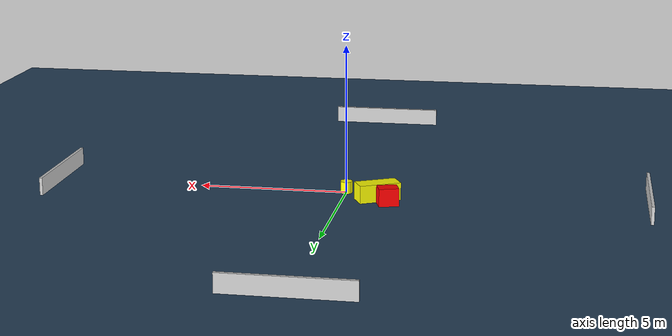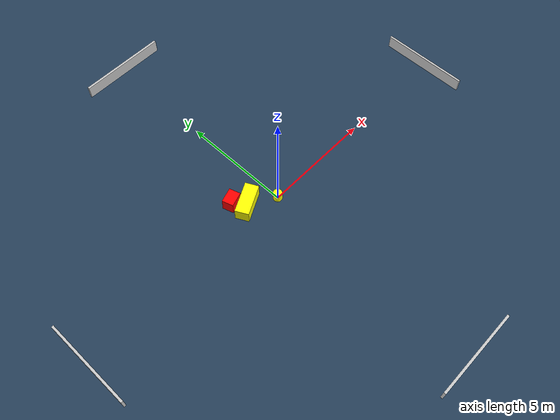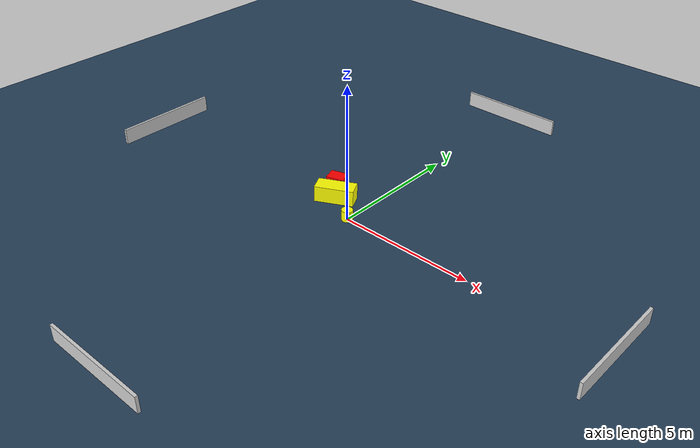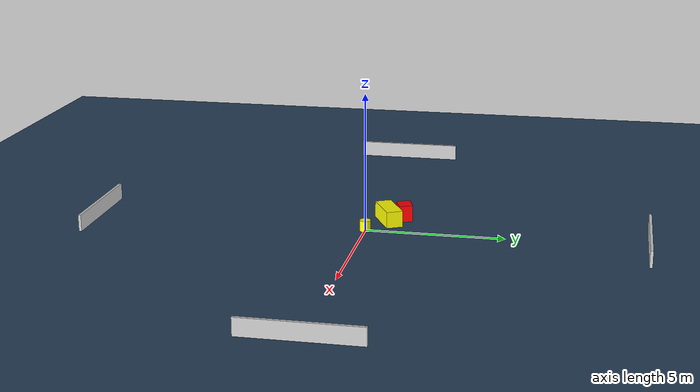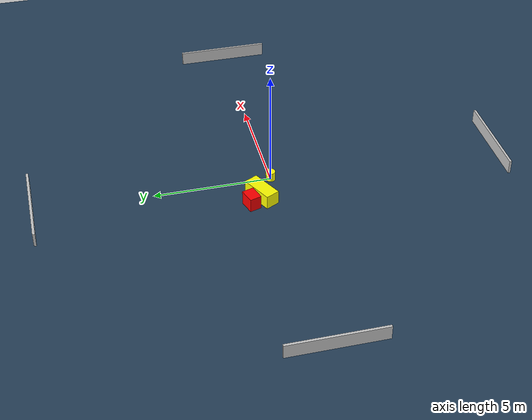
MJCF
<?xml version="1.0" ?>
<mujoco model="generated_environment">
  <option timestep="0.01" integrator="RK4" cone="elliptic"/>
  <default>
    <geom density="1"/>
  </default>
  <asset>
    <texture builtin="gradient" height="3072" name="skybox" rgb1="0.3 0.5 0.7" rgb2="0 0 0" type="skybox" width="512"/>
    <texture builtin="checker" height="300" name="groundplane" rgb1="0.2 0.3 0.4" rgb2="0.1 0.2 0.3" type="2d" width="300"/>
    <material name="groundplane" reflectance="0.2" texrepeat="5 5" texture="groundplane"/>
  </asset>
  <worldbody>
    <light dir="0 0 -1" directional="true" pos="0 0 1.5"/>
    <geom condim="3" friction="0.5 0.005 0.001" material="groundplane" name="floor" pos="0 0 0" size="0 0 0.05" type="plane"/>
    <body name="walls">
      <geom name="wall_1" condim="4" pos="-10.0 0.0 0.3" rgba="0.800000011920929 0.800000011920929 0.800000011920929 1.0" size="0.05 2.0 0.3" type="box"/>
      <geom name="wall_2" condim="4" pos="10.0 0.0 0.3" rgba="0.800000011920929 0.800000011920929 0.800000011920929 1.0" size="0.05 2.0 0.3" type="box"/>
      <geom name="wall_3" condim="4" pos="0.0 -10.0 0.3" rgba="0.800000011920929 0.800000011920929 0.800000011920929 1.0" size="2.0 0.05 0.3" type="box"/>
      <geom name="wall_4" condim="4" pos="0.0 10.0 0.3" rgba="0.800000011920929 0.800000011920929 0.800000011920929 1.0" size="2.0 0.05 0.3" type="box"/>
    </body>
    <body name="robot">
      <joint name="joint_x" type="slide" pos="0 0 0" axis="1 0 0"/>
      <joint name="joint_y" type="slide" pos="0 0 0" axis="0 1 0"/>
      <geom name="robot" type="cylinder" pos="0.0 0.0 0.2" size="0.2 0.2 0.0" mass="5.0" friction="1.0 0.005 0.0001" condim="4" rgba="1.0 1.0 0.0 1.0"/>
    </body>
    <body name="obstacle_1_movable">
      <geom name="obstacle_1_movable" condim="4" pos="-1.1488106175007462 0.6569172408348292 0.3" euler="0 0 207.04732507693387" friction="0.0 0.005 0.001" rgba="1.0 1.0 0.0 1.0" size="0.7075695761864402 0.30413355778488776 0.3" type="box" mass="0.1"/>
      <joint type="free"/>
    </body>
    <body name="obstacle_2_static">
      <geom name="obstacle_2_static" condim="4" pos="-1.5539625640445438 1.1688451276194303 0.3" euler="0 0 197.50274573936073" friction="0.0 0.005 0.001" rgba="1.0 0.0 0.0 1.0" size="0.3312102283844863 0.2540181956497689 0.3" type="box"/>
    </body>
  </worldbody>
  <actuator>
    <motor name="actuator_x" joint="joint_x" gear="1" ctrlrange="-1 1"/>
    <motor name="actuator_y" joint="joint_y" gear="1" ctrlrange="-1 1"/>
  </actuator>
</mujoco>
